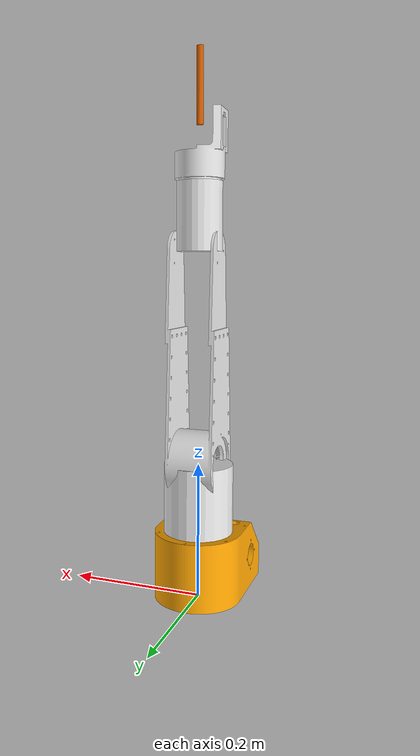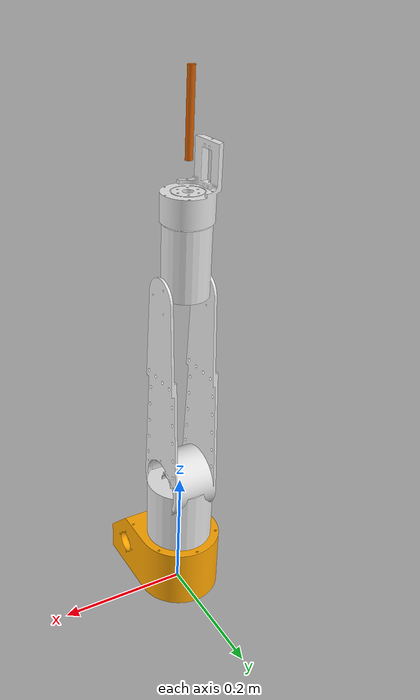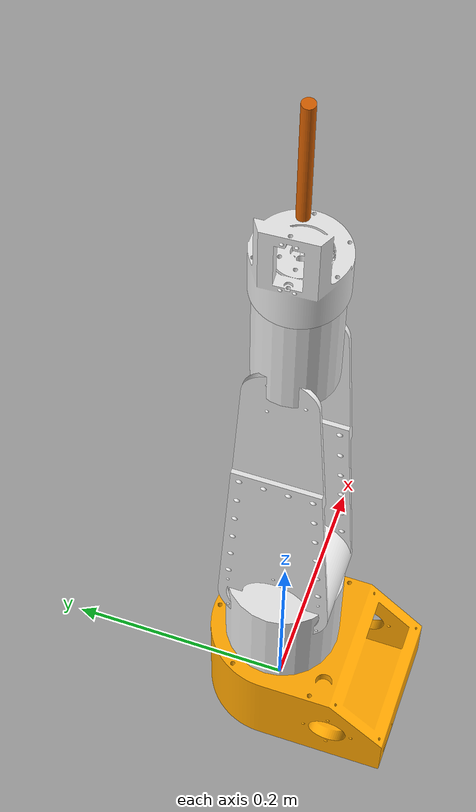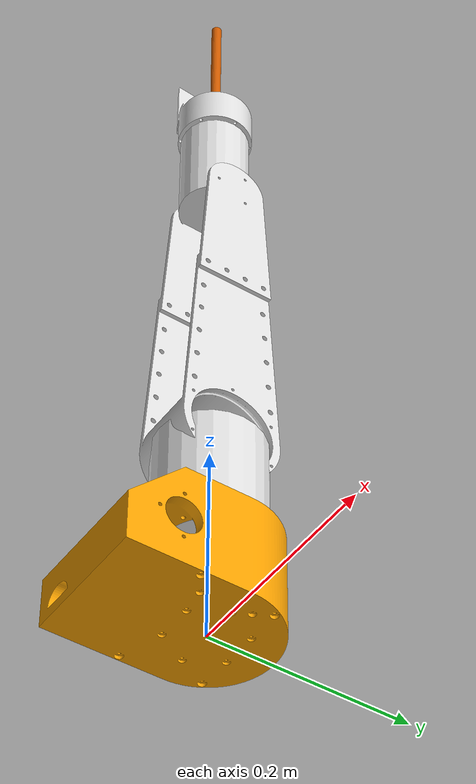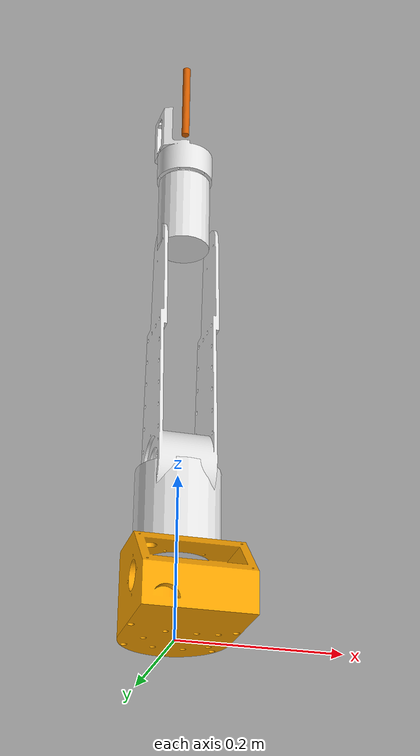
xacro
<?xml version="1.0"?>
<robot name="NIXUS" xmlns:xacro="http://ros.org/wiki/xacro">

  <xacro:property name="base_h" value="0.1" />
  <xacro:property name="shoulder_h" value="0.1025" />
  <xacro:property name="humerus_h" value="0.3125" />
  <xacro:property name="ulna_h" value="0.1" />
  <xacro:property name="wrist_h" value="0.08" />
  <xacro:property name="end_h" value="0.11" />
  <xacro:property name="end_r" value="0.005" />
  <xacro:property name="mass" value="1" /> <!-- arbitrary value for mass -->
  <xacro:property name="mesh_scale" value="0.001 0.001 0.001" /> <!-- for mesh from m to mm -->
  <xacro:property name="white" value="0.9 0.9 0.9 0.9" />
  <xacro:property name="orange" value="1 0.65 0.0 0.9" />

  <link name="base_link">
    <visual>
    <origin rpy="0.0 0 0" xyz="0 0 0"/>
      <geometry>
        <mesh filename="package://nixus/meshes/NIXUS_base.stl" scale="${mesh_scale}"/>
      </geometry>
      <material name="orange">
        <color rgba="${orange}"/>
      </material>
    </visual>
    <collision>
      <geometry>
        <mesh filename="package://nixus/meshes/NIXUS_base.stl" scale="${mesh_scale}"/>
      </geometry>
    </collision>
    <inertial>
      <mass value="${mass*1000000}"/> <!-- making it unmovable-->
      <inertia
	  ixx="1.0" ixy="0.0" ixz="0.0"
	  iyy="1.0" iyz="0.0"
	  izz="1.0"/>
    </inertial>
  </link>

    <joint name="base_joint" type="revolute">
    <parent link="base_link"/>
    <child link="shoulder_link"/>
    <limit effort="1000.0" lower="-${pi/2}" upper="${pi/2}" velocity="0.5"/>
    <origin rpy="0 0 0" xyz="0 0 ${base_h}"/>
    <axis xyz = "0 0 1"/>
  </joint>

  <link name="shoulder_link">
    <visual>
    <origin rpy="0.0 0 0" xyz="0 0 ${shoulder_h/2}"/>
      <geometry>
        <cylinder radius="${shoulder_h/2}" length="${shoulder_h}"/>
      </geometry>
      <material name="white">
        <color rgba="${white}"/>
      </material>
    </visual>
    <collision>
      <geometry>
        <cylinder radius="${shoulder_h}" length="${shoulder_h}"/>
      </geometry>
    </collision>
    <inertial>
      <mass value="${mass}"/>
      <inertia
	  ixx="1.0" ixy="0.0" ixz="0.0"
	  iyy="1.0" iyz="0.0"
	  izz="1.0"/>
    </inertial>
  </link>

      <joint name="shoulder_joint" type="revolute">
    <parent link="shoulder_link"/>
    <child link="humerus_link"/>
    <limit effort="1000.0" lower="0" upper="${pi/2}" velocity="0.5"/>
    <origin rpy="0 ${-pi/2} 0" xyz="0 0 ${shoulder_h}"/>
    <axis xyz = "0 0 1"/>
  </joint>

  <link name="humerus_link">
    <visual>
    <origin rpy="0 0 0" xyz="0 0 0"/>
      <geometry>
        <mesh filename="package://nixus/meshes/NIXUS_humerus.stl" scale="${mesh_scale}"/>
      </geometry>
      <material name="white">
        <color rgba="${white}"/>
      </material>
    </visual>
    <collision>
      <geometry>
        <mesh filename="package://nixus/meshes/NIXUS_humerus.stl" scale="${mesh_scale}"/>
      </geometry>
    </collision>
    <inertial>
      <mass value="${mass}"/>
      <inertia
	  ixx="1.0" ixy="0.0" ixz="0.0"
	  iyy="1.0" iyz="0.0"
	  izz="1.0"/>
    </inertial>
  </link>

      <joint name="elbow_joint" type="revolute">
    <parent link="humerus_link"/>
    <child link="ulna_link"/>
    <limit effort="1000.0" lower="-${4.5*pi/6}" upper="${4.5*pi/6}" velocity="0.5"/>
    <origin rpy="0 0 0" xyz="${humerus_h} 0 0"/>
    <axis xyz = "0 0 1"/>
  </joint>

  <link name="ulna_link">
    <visual>
    <origin rpy="0 ${pi/2} 0" xyz="${ulna_h/2} 0 0"/>
      <geometry>
        <cylinder radius="${ulna_h/3}" length="${ulna_h}"/>
      </geometry>
      <material name="white">
        <color rgba="${white}"/>
      </material>
    </visual>
    <collision>
      <geometry>
        <cylinder radius="${ulna_h/2}" length="${ulna_h}"/>
      </geometry>
    </collision>
    <inertial>
      <mass value="${mass}"/>
      <inertia
	  ixx="1.0" ixy="0.0" ixz="0.0"
	  iyy="1.0" iyz="0.0"
	  izz="1.0"/>
    </inertial>
  </link>

  <joint name="wrist_joint" type="continuous">
    <parent link="ulna_link"/>
    <child link="wrist_link"/>
    <limit effort="1000.0" velocity="0.5"/>
    <origin rpy="0 ${pi/2} 0" xyz="${ulna_h} 0 0"/>
    <axis xyz = "0 0 1"/>
  </joint>

  <link name="wrist_link">
    <visual>
    <origin rpy="0 0 -${pi/6}" xyz="0 0 0"/>
      <geometry>
        <mesh filename="package://nixus/meshes/NIXUS_wrist.stl" scale="${mesh_scale}"/>
      </geometry>
      <material name="white">
        <color rgba="${white}"/>
      </material>
    </visual>
    <collision>
      <geometry>
        <mesh filename="package://nixus/meshes/NIXUS_wrist.stl" scale="${mesh_scale}"/>
      </geometry>
    </collision>
    <inertial>
      <mass value="${mass}"/>
      <inertia
	  ixx="1.0" ixy="1.0" ixz="1.0"
	  iyy="1.0" iyz="1.0"
	  izz="1.0"/>
    </inertial>
  </link>

  <joint name="end_joint" type="revolute">
    <parent link="wrist_link"/>
    <child link="end_link"/>
    <limit effort="1000.0" lower="-${pi/2}" upper="${pi/2}" velocity="0.5"/>
    <origin rpy="0 0 0" xyz="0 0 ${wrist_h}"/>
    <axis xyz = "1 0 0"/>
  </joint>

  <link name="end_link">
    <visual>
      <origin rpy="0 0 0" xyz="0 0 ${end_h/2}"/>
      <geometry>
        <cylinder radius="${end_r}" length="${end_h}"/>
      </geometry>
    </visual>
    <inertial>
      <mass value="${mass}"/>
      <inertia
	  ixx="1.0" ixy="1.0" ixz="1.0"
	  iyy="1.0" iyz="1.0"
	  izz="1.0"/>
    </inertial>
  </link>

  <joint name="end_point" type="fixed">
    <parent link="end_joint"/>
    <limit effort="1000.0" lower="-${pi/2}" upper="${pi/2}" velocity="0.5"/>
    <origin rpy="0 0 0" xyz="0 0 ${wrist_h}"/>
    <axis xyz = "1 0 0"/>
  </joint>

</robot>
